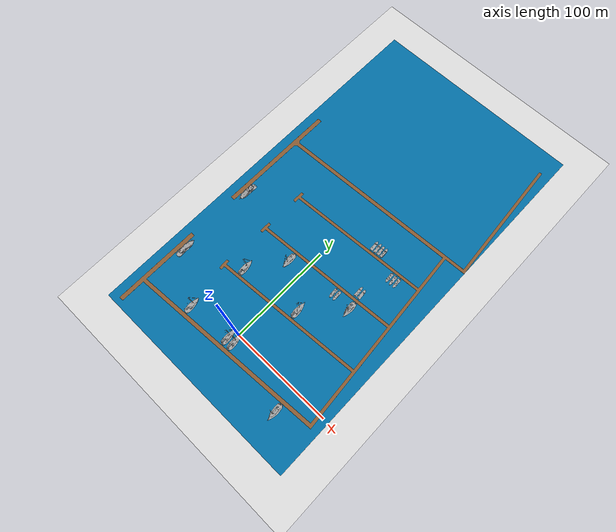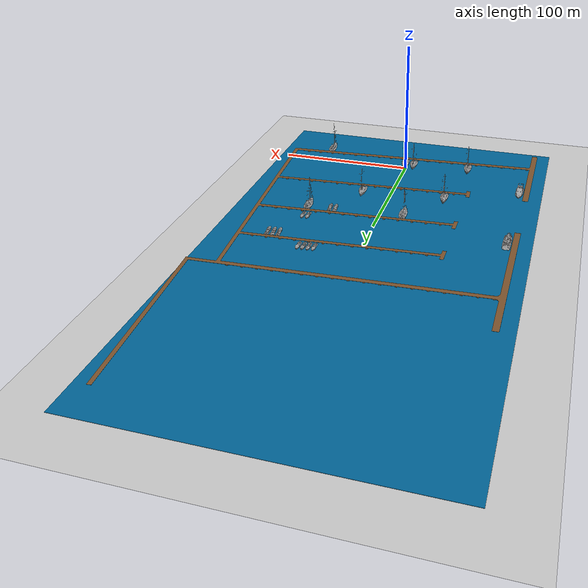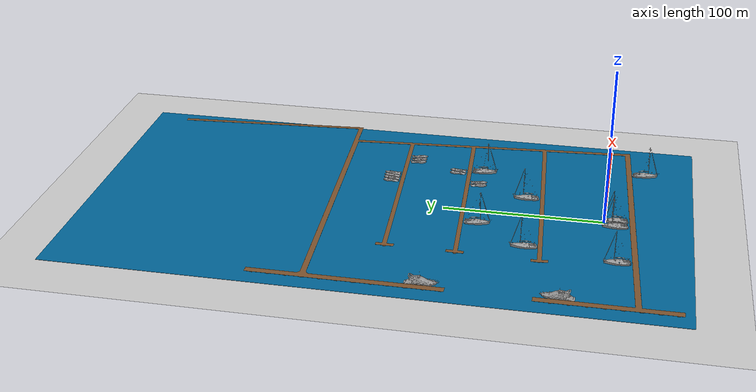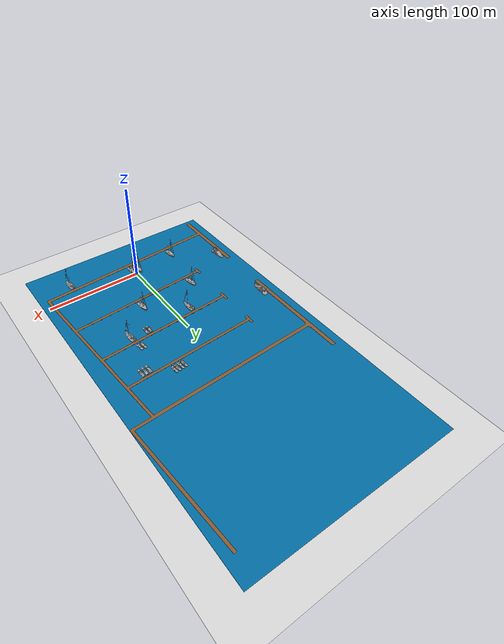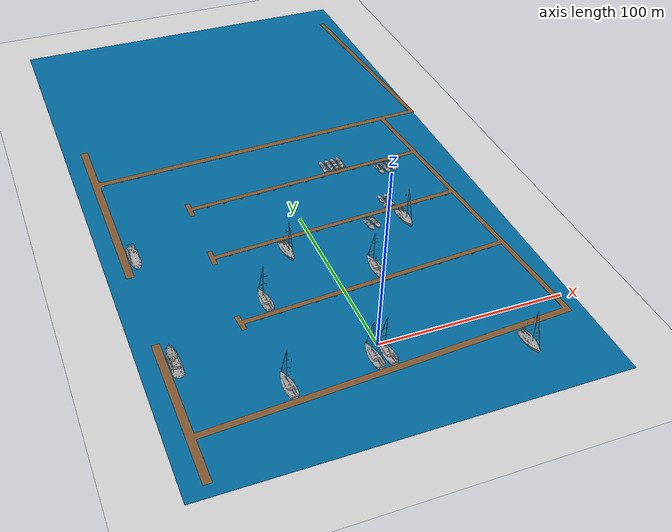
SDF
<sdf version="1.7">
 <world name="default">
  <model name="ground_plane">
   <static>1</static>
   <link name="link">
    <collision name="collision">
     <geometry><plane><normal>0 0 1</normal><size>100 100</size></plane></geometry>
     <surface><friction><ode><mu>100</mu><mu2>50</mu2></ode></friction></surface>
    </collision>
    <visual name="visual">
     <cast_shadows>0</cast_shadows>
     <geometry><plane><normal>0 0 1</normal><size>100 100</size></plane></geometry>
     <material>
      <script><uri>file://media/materials/scripts/gazebo.material</uri><name>Gazebo/Grey</name></script>
     </material>
    </visual>
   </link>
  </model>
  <model name="Marina_Zona_A">
   <link name="link">
    <inertial>
     <mass>100000</mass>
     <inertia><ixx>0</ixx><ixy>0</ixy><ixz>0</ixz><iyy>0</iyy><iyz>0</iyz><izz>0</izz></inertia>
    </inertial>
    <visual name="visual">
     <geometry>
      <mesh>
       <uri>/home/albert/marinero_ws/src/marinero_simulations/models/Marina_Zona_A/meshes/Marina_Zona_A.stl</uri>
       <scale>1 1 1</scale>
      </mesh>
     </geometry>
     <material>
      <script><uri>file://media/materials/scripts/gazebo.material</uri><name>Gazebo/Brown</name></script>
      <ambient>0.278 0.129 0.02 1</ambient>
      <diffuse>0.278 0.129 0.02 1</diffuse>
      <specular>0.278 0.129 0.02 1</specular>
      <emissive>0 0 0 1</emissive>
      <shader type="pixel"><normal_map>__default__</normal_map></shader>
     </material>
    </visual>
    <collision name="collision">
     <geometry>
      <mesh>
       <uri>/home/albert/marinero_ws/src/marinero_simulations/models/Marina_Zona_A/meshes/Marina_Zona_A.stl</uri>
       <scale>1 1 1</scale>
      </mesh>
     </geometry>
     <surface>
      <friction>
       <ode><mu>0.9</mu><mu2>0.9</mu2><fdir1>0 0 0</fdir1><slip1>0.001</slip1><slip2>1e-05</slip2></ode>
       <torsional>
        <coefficient>1</coefficient>
        <patch_radius>0</patch_radius>
        <surface_radius>0</surface_radius>
        <use_patch_radius>1</use_patch_radius>
        <ode><slip>0</slip></ode>
       </torsional>
      </friction>
      <bounce><restitution_coefficient>0</restitution_coefficient><threshold>1000</threshold></bounce>
      <contact>
       <collide_without_contact>0</collide_without_contact>
       <collide_without_contact_bitmask>0</collide_without_contact_bitmask>
       <collide_bitmask>1</collide_bitmask>
       <ode>
        <soft_cfm>0</soft_cfm>
        <soft_erp>0.2</soft_erp>
        <kp>1e+11</kp>
        <kd>100</kd>
        <max_vel>10</max_vel>
        <min_depth>0.001</min_depth>
       </ode>
       <bullet>
        <split_impulse>1</split_impulse>
        <split_impulse_penetration_threshold>-0.01</split_impulse_penetration_threshold>
        <soft_cfm>0</soft_cfm>
        <soft_erp>0.2</soft_erp>
        <kp>1e+11</kp>
        <kd>100</kd>
       </bullet>
      </contact>
     </surface>
    </collision>
   </link>
   <static>1</static>
   <pose>-100.227 -48.3185 0.08 0 -0 0</pose>
  </model>
  <model name="sailboat_1">
   <static>1</static>
   <link name="link">
    <visual name="visual">
     <pose>0 0 1 0 0 -1.507</pose>
     <geometry>
      <mesh>
       <uri>/home/albert/marinero_ws/src/marinero_simulations/models/sailboat_1/meshes/Sailboat.stl</uri>
       <scale>1.8 1.8 1.8</scale>
      </mesh>
     </geometry>
     <material>
      <script><uri>file://media/materials/scripts/gazebo.material</uri><name>Gazebo/Grey</name></script>
     </material>
    </visual>
    <collision name="collision">
     <pose>0 0 1 0 0 -1.507</pose>
     <geometry>
      <mesh>
       <uri>/home/albert/marinero_ws/src/marinero_simulations/models/sailboat_1/meshes/Sailboat.stl</uri>
       <scale>1.8 1.8 1.8</scale>
      </mesh>
     </geometry>
    </collision>
   </link>
   <pose>-48.5208 -10.4492 0 0 -0 0</pose>
  </model>
  <model name="sailboat_1_clone">
   <static>1</static>
   <link name="link">
    <visual name="visual">
     <pose>0 0 1 0 0 -1.507</pose>
     <geometry>
      <mesh>
       <uri>/home/albert/marinero_ws/src/marinero_simulations/models/sailboat_1/meshes/Sailboat.stl</uri>
       <scale>1.8 1.8 1.8</scale>
      </mesh>
     </geometry>
     <material>
      <script><uri>file://media/materials/scripts/gazebo.material</uri><name>Gazebo/Grey</name></script>
     </material>
    </visual>
    <collision name="collision">
     <pose>0 0 1 0 0 -1.507</pose>
     <geometry>
      <mesh>
       <uri>/home/albert/marinero_ws/src/marinero_simulations/models/sailboat_1/meshes/Sailboat.stl</uri>
       <scale>1.8 1.8 1.8</scale>
      </mesh>
     </geometry>
    </collision>
   </link>
   <pose>-39.7569 44.9738 0 0 -0 0</pose>
  </model>
  <model name="sailboat_1_clone_0">
   <static>1</static>
   <link name="link">
    <visual name="visual">
     <pose>0 0 1 0 0 -1.507</pose>
     <geometry>
      <mesh>
       <uri>/home/albert/marinero_ws/src/marinero_simulations/models/sailboat_1/meshes/Sailboat.stl</uri>
       <scale>1.8 1.8 1.8</scale>
      </mesh>
     </geometry>
     <material>
      <script><uri>file://media/materials/scripts/gazebo.material</uri><name>Gazebo/Grey</name></script>
     </material>
    </visual>
    <collision name="collision">
     <pose>0 0 1 0 0 -1.507</pose>
     <geometry>
      <mesh>
       <uri>/home/albert/marinero_ws/src/marinero_simulations/models/sailboat_1/meshes/Sailboat.stl</uri>
       <scale>1.8 1.8 1.8</scale>
      </mesh>
     </geometry>
    </collision>
   </link>
   <pose>21.7205 49.4998 0 0 -0 0</pose>
  </model>
  <model name="sailboat_1_clone_1">
   <static>1</static>
   <link name="link">
    <visual name="visual">
     <pose>0 0 1 0 0 -1.507</pose>
     <geometry>
      <mesh>
       <uri>/home/albert/marinero_ws/src/marinero_simulations/models/sailboat_1/meshes/Sailboat.stl</uri>
       <scale>1.8 1.8 1.8</scale>
      </mesh>
     </geometry>
     <material>
      <script><uri>file://media/materials/scripts/gazebo.material</uri><name>Gazebo/Grey</name></script>
     </material>
    </visual>
    <collision name="collision">
     <pose>0 0 1 0 0 -1.507</pose>
     <geometry>
      <mesh>
       <uri>/home/albert/marinero_ws/src/marinero_simulations/models/sailboat_1/meshes/Sailboat.stl</uri>
       <scale>1.8 1.8 1.8</scale>
      </mesh>
     </geometry>
    </collision>
   </link>
   <pose>67.7231 -22.5244 0 0 0 -3.13388</pose>
  </model>
  <model name="sailboat_1_clone_1_clone">
   <static>1</static>
   <link name="link">
    <visual name="visual">
     <pose>0 0 1 0 0 -1.507</pose>
     <geometry>
      <mesh>
       <uri>/home/albert/marinero_ws/src/marinero_simulations/models/sailboat_1/meshes/Sailboat.stl</uri>
       <scale>1.8 1.8 1.8</scale>
      </mesh>
     </geometry>
     <material>
      <script><uri>file://media/materials/scripts/gazebo.material</uri><name>Gazebo/Grey</name></script>
     </material>
    </visual>
    <collision name="collision">
     <pose>0 0 1 0 0 -1.507</pose>
     <geometry>
      <mesh>
       <uri>/home/albert/marinero_ws/src/marinero_simulations/models/sailboat_1/meshes/Sailboat.stl</uri>
       <scale>1.8 1.8 1.8</scale>
      </mesh>
     </geometry>
    </collision>
   </link>
   <pose>53.4256 81.5662 0 0 0 -3.13388</pose>
  </model>
  <model name="speedboat_clone_4_clone">
   <static>1</static>
   <link name="link">
    <visual name="visual">
     <pose>0 0 0.2 0 -0 1.57</pose>
     <geometry>
      <mesh>
       <uri>/home/albert/marinero_ws/src/marinero_simulations/models/speedboat/meshes/Speedboat.stl</uri>
       <scale>2 2 2</scale>
      </mesh>
     </geometry>
     <material>
      <script><uri>file://media/materials/scripts/gazebo.material</uri><name>Gazebo/Grey</name></script>
     </material>
    </visual>
    <collision name="collision">
     <pose>0 0 0.2 0 -0 1.57</pose>
     <geometry>
      <mesh>
       <uri>/home/albert/marinero_ws/src/marinero_simulations/models/sailboat_1/meshes/Speedboat.stl</uri>
       <scale>2 2 2</scale>
      </mesh>
     </geometry>
    </collision>
   </link>
   <pose>40.7131 140.663 0 0 -0 0.057421</pose>
  </model>
  <model name="speedboat_clone_4_clone_clone">
   <static>1</static>
   <link name="link">
    <visual name="visual">
     <pose>0 0 0.2 0 -0 1.57</pose>
     <geometry>
      <mesh>
       <uri>/home/albert/marinero_ws/src/marinero_simulations/models/speedboat/meshes/Speedboat.stl</uri>
       <scale>2 2 2</scale>
      </mesh>
     </geometry>
     <material>
      <script><uri>file://media/materials/scripts/gazebo.material</uri><name>Gazebo/Grey</name></script>
     </material>
    </visual>
    <collision name="collision">
     <pose>0 0 0.2 0 -0 1.57</pose>
     <geometry>
      <mesh>
       <uri>/home/albert/marinero_ws/src/marinero_simulations/models/sailboat_1/meshes/Speedboat.stl</uri>
       <scale>2 2 2</scale>
      </mesh>
     </geometry>
    </collision>
   </link>
   <pose>37.1169 140.409 0 0 -0 0.057421</pose>
  </model>
  <model name="speedboat_clone_4_clone_clone_0">
   <static>1</static>
   <link name="link">
    <visual name="visual">
     <pose>0 0 0.2 0 -0 1.57</pose>
     <geometry>
      <mesh>
       <uri>/home/albert/marinero_ws/src/marinero_simulations/models/speedboat/meshes/Speedboat.stl</uri>
       <scale>2 2 2</scale>
      </mesh>
     </geometry>
     <material>
      <script><uri>file://media/materials/scripts/gazebo.material</uri><name>Gazebo/Grey</name></script>
     </material>
    </visual>
    <collision name="collision">
     <pose>0 0 0.2 0 -0 1.57</pose>
     <geometry>
      <mesh>
       <uri>/home/albert/marinero_ws/src/marinero_simulations/models/sailboat_1/meshes/Speedboat.stl</uri>
       <scale>2 2 2</scale>
      </mesh>
     </geometry>
    </collision>
   </link>
   <pose>33.5259 140.097 0 0 -0 0.057421</pose>
  </model>
  <model name="speedboat_clone_4_clone_clone_1">
   <static>1</static>
   <link name="link">
    <visual name="visual">
     <pose>0 0 0.2 0 -0 1.57</pose>
     <geometry>
      <mesh>
       <uri>/home/albert/marinero_ws/src/marinero_simulations/models/speedboat/meshes/Speedboat.stl</uri>
       <scale>2 2 2</scale>
      </mesh>
     </geometry>
     <material>
      <script><uri>file://media/materials/scripts/gazebo.material</uri><name>Gazebo/Grey</name></script>
     </material>
    </visual>
    <collision name="collision">
     <pose>0 0 0.2 0 -0 1.57</pose>
     <geometry>
      <mesh>
       <uri>/home/albert/marinero_ws/src/marinero_simulations/models/sailboat_1/meshes/Speedboat.stl</uri>
       <scale>2 2 2</scale>
      </mesh>
     </geometry>
    </collision>
   </link>
   <pose>29.824 139.85 0 0 -0 0.057421</pose>
  </model>
  <model name="speedboat_clone_4_clone_clone_2">
   <static>1</static>
   <link name="link">
    <visual name="visual">
     <pose>0 0 0.2 0 -0 1.57</pose>
     <geometry>
      <mesh>
       <uri>/home/albert/marinero_ws/src/marinero_simulations/models/speedboat/meshes/Speedboat.stl</uri>
       <scale>2 2 2</scale>
      </mesh>
     </geometry>
     <material>
      <script><uri>file://media/materials/scripts/gazebo.material</uri><name>Gazebo/Grey</name></script>
     </material>
    </visual>
    <collision name="collision">
     <pose>0 0 0.2 0 -0 1.57</pose>
     <geometry>
      <mesh>
       <uri>/home/albert/marinero_ws/src/marinero_simulations/models/sailboat_1/meshes/Speedboat.stl</uri>
       <scale>2 2 2</scale>
      </mesh>
     </geometry>
    </collision>
   </link>
   <pose>48.4483 98.6679 0 0 -0 0.057421</pose>
  </model>
  <model name="speedboat_clone_4_clone_clone_3">
   <static>1</static>
   <link name="link">
    <visual name="visual">
     <pose>0 0 0.2 0 -0 1.57</pose>
     <geometry>
      <mesh>
       <uri>/home/albert/marinero_ws/src/marinero_simulations/models/speedboat/meshes/Speedboat.stl</uri>
       <scale>2 2 2</scale>
      </mesh>
     </geometry>
     <material>
      <script><uri>file://media/materials/scripts/gazebo.material</uri><name>Gazebo/Grey</name></script>
     </material>
    </visual>
    <collision name="collision">
     <pose>0 0 0.2 0 -0 1.57</pose>
     <geometry>
      <mesh>
       <uri>/home/albert/marinero_ws/src/marinero_simulations/models/sailboat_1/meshes/Speedboat.stl</uri>
       <scale>2 2 2</scale>
      </mesh>
     </geometry>
    </collision>
   </link>
   <pose>52.2215 98.8441 0 0 -0 0.057421</pose>
  </model>
  <model name="speedboat_clone_3_clone_11_clone_1_clone">
   <static>1</static>
   <link name="link">
    <visual name="visual">
     <pose>0 0 0.2 0 -0 1.57</pose>
     <geometry>
      <mesh>
       <uri>/home/albert/marinero_ws/src/marinero_simulations/models/speedboat/meshes/Speedboat.stl</uri>
       <scale>2 2 2</scale>
      </mesh>
     </geometry>
     <material>
      <script><uri>file://media/materials/scripts/gazebo.material</uri><name>Gazebo/Grey</name></script>
     </material>
    </visual>
    <collision name="collision">
     <pose>0 0 0.2 0 -0 1.57</pose>
     <geometry>
      <mesh>
       <uri>/home/albert/marinero_ws/src/marinero_simulations/models/sailboat_1/meshes/Speedboat.stl</uri>
       <scale>2 2 2</scale>
      </mesh>
     </geometry>
    </collision>
   </link>
   <pose>67.5823 126.121 0 0 0 -3.07382</pose>
  </model>
  <model name="speedboat_clone_3_clone_11_clone_1_clone_clone">
   <static>1</static>
   <link name="link">
    <visual name="visual">
     <pose>0 0 0.2 0 -0 1.57</pose>
     <geometry>
      <mesh>
       <uri>/home/albert/marinero_ws/src/marinero_simulations/models/speedboat/meshes/Speedboat.stl</uri>
       <scale>2 2 2</scale>
      </mesh>
     </geometry>
     <material>
      <script><uri>file://media/materials/scripts/gazebo.material</uri><name>Gazebo/Grey</name></script>
     </material>
    </visual>
    <collision name="collision">
     <pose>0 0 0.2 0 -0 1.57</pose>
     <geometry>
      <mesh>
       <uri>/home/albert/marinero_ws/src/marinero_simulations/models/sailboat_1/meshes/Speedboat.stl</uri>
       <scale>2 2 2</scale>
      </mesh>
     </geometry>
    </collision>
   </link>
   <pose>63.5964 125.869 0 0 0 -3.07382</pose>
  </model>
  <model name="speedboat_clone_3_clone_11_clone_1_clone_clone_0">
   <static>1</static>
   <link name="link">
    <visual name="visual">
     <pose>0 0 0.2 0 -0 1.57</pose>
     <geometry>
      <mesh>
       <uri>/home/albert/marinero_ws/src/marinero_simulations/models/speedboat/meshes/Speedboat.stl</uri>
       <scale>2 2 2</scale>
      </mesh>
     </geometry>
     <material>
      <script><uri>file://media/materials/scripts/gazebo.material</uri><name>Gazebo/Grey</name></script>
     </material>
    </visual>
    <collision name="collision">
     <pose>0 0 0.2 0 -0 1.57</pose>
     <geometry>
      <mesh>
       <uri>/home/albert/marinero_ws/src/marinero_simulations/models/sailboat_1/meshes/Speedboat.stl</uri>
       <scale>2 2 2</scale>
      </mesh>
     </geometry>
    </collision>
   </link>
   <pose>59.554 125.7 0 0 0 -3.07382</pose>
  </model>
  <model name="speedboat_clone_3_clone_11_clone_1_clone_clone_0_clone">
   <static>1</static>
   <link name="link">
    <visual name="visual">
     <pose>0 0 0.2 0 -0 1.57</pose>
     <geometry>
      <mesh>
       <uri>/home/albert/marinero_ws/src/marinero_simulations/models/speedboat/meshes/Speedboat.stl</uri>
       <scale>2 2 2</scale>
      </mesh>
     </geometry>
     <material>
      <script><uri>file://media/materials/scripts/gazebo.material</uri><name>Gazebo/Grey</name></script>
     </material>
    </visual>
    <collision name="collision">
     <pose>0 0 0.2 0 -0 1.57</pose>
     <geometry>
      <mesh>
       <uri>/home/albert/marinero_ws/src/marinero_simulations/models/sailboat_1/meshes/Speedboat.stl</uri>
       <scale>2 2 2</scale>
      </mesh>
     </geometry>
    </collision>
   </link>
   <pose>33.1215 81.572 0 0 0 -3.07382</pose>
  </model>
  <model name="speedboat_clone_3_clone_11_clone_1_clone_clone_0_clone_0">
   <static>1</static>
   <link name="link">
    <visual name="visual">
     <pose>0 0 0.2 0 -0 1.57</pose>
     <geometry>
      <mesh>
       <uri>/home/albert/marinero_ws/src/marinero_simulations/models/speedboat/meshes/Speedboat.stl</uri>
       <scale>2 2 2</scale>
      </mesh>
     </geometry>
     <material>
      <script><uri>file://media/materials/scripts/gazebo.material</uri><name>Gazebo/Grey</name></script>
     </material>
    </visual>
    <collision name="collision">
     <pose>0 0 0.2 0 -0 1.57</pose>
     <geometry>
      <mesh>
       <uri>/home/albert/marinero_ws/src/marinero_simulations/models/sailboat_1/meshes/Speedboat.stl</uri>
       <scale>2 2 2</scale>
      </mesh>
     </geometry>
    </collision>
   </link>
   <pose>36.9942 81.9155 0 0 0 -3.07382</pose>
  </model>
  <model name="sailboat_1_clone_2">
   <static>1</static>
   <link name="link">
    <visual name="visual">
     <pose>0 0 1 0 0 -1.507</pose>
     <geometry>
      <mesh>
       <uri>/home/albert/marinero_ws/src/marinero_simulations/models/sailboat_1/meshes/Sailboat.stl</uri>
       <scale>1.8 1.8 1.8</scale>
      </mesh>
     </geometry>
     <material>
      <script><uri>file://media/materials/scripts/gazebo.material</uri><name>Gazebo/Grey</name></script>
     </material>
    </visual>
    <collision name="collision">
     <pose>0 0 1 0 0 -1.507</pose>
     <geometry>
      <mesh>
       <uri>/home/albert/marinero_ws/src/marinero_simulations/models/sailboat_1/meshes/Sailboat.stl</uri>
       <scale>1.8 1.8 1.8</scale>
      </mesh>
     </geometry>
    </collision>
   </link>
   <pose>-5.08482 -7.45102 0 0 -0 0</pose>
  </model>
  <model name="sailboat_1_clone_3">
   <static>1</static>
   <link name="link">
    <visual name="visual">
     <pose>0 0 1 0 0 -1.507</pose>
     <geometry>
      <mesh>
       <uri>/home/albert/marinero_ws/src/marinero_simulations/models/sailboat_1/meshes/Sailboat.stl</uri>
       <scale>1.8 1.8 1.8</scale>
      </mesh>
     </geometry>
     <material>
      <script><uri>file://media/materials/scripts/gazebo.material</uri><name>Gazebo/Grey</name></script>
     </material>
    </visual>
    <collision name="collision">
     <pose>0 0 1 0 0 -1.507</pose>
     <geometry>
      <mesh>
       <uri>/home/albert/marinero_ws/src/marinero_simulations/models/sailboat_1/meshes/Sailboat.stl</uri>
       <scale>1.8 1.8 1.8</scale>
      </mesh>
     </geometry>
    </collision>
   </link>
   <pose>1.79626 -7.14461 0 0 -0 0</pose>
  </model>
  <model name="yacht_1">
   <static>1</static>
   <link name="link">
    <visual name="visual">
     <pose>0 0 0.35 0 -0 0</pose>
     <geometry>
      <mesh>
       <uri>/home/albert/marinero_ws/src/marinero_simulations/models/yacht_1/meshes/Yacht_1.stl</uri>
       <scale>2.2 2.2 2.2</scale>
      </mesh>
     </geometry>
     <material>
      <script><uri>file://media/materials/scripts/gazebo.material</uri><name>Gazebo/Grey</name></script>
     </material>
    </visual>
    <collision name="collision">
     <pose>0 0 0.35 0 -0 0</pose>
     <geometry>
      <mesh>
       <uri>/home/albert/marinero_ws/src/marinero_simulations/models/yacht_1/meshes/Yacht_1.stl</uri>
       <scale>2.2 2.2 2.2</scale>
      </mesh>
     </geometry>
    </collision>
   </link>
   <pose>-92.6135 99.2203 0 0 -0 0</pose>
  </model>
  <model name="yacht_1_0">
   <static>1</static>
   <link name="link">
    <visual name="visual">
     <pose>0 0 0.35 0 -0 0</pose>
     <geometry>
      <mesh>
       <uri>/home/albert/marinero_ws/src/marinero_simulations/models/yacht_1/meshes/Yacht_1.stl</uri>
       <scale>2.2 2.2 2.2</scale>
      </mesh>
     </geometry>
     <material>
      <script><uri>file://media/materials/scripts/gazebo.material</uri><name>Gazebo/Grey</name></script>
     </material>
    </visual>
    <collision name="collision">
     <pose>0 0 0.35 0 -0 0</pose>
     <geometry>
      <mesh>
       <uri>/home/albert/marinero_ws/src/marinero_simulations/models/yacht_1/meshes/Yacht_1.stl</uri>
       <scale>2.2 2.2 2.2</scale>
      </mesh>
     </geometry>
    </collision>
   </link>
   <pose>-92.721 20.3612 0 0 -0 3.13948</pose>
  </model>
  <model name="sailboat_1_clone_1_clone_clone_0_clone_1">
   <static>1</static>
   <link name="link">
    <visual name="visual">
     <pose>0 0 1 0 0 -1.507</pose>
     <geometry>
      <mesh>
       <uri>/home/albert/marinero_ws/src/marinero_simulations/models/sailboat_1/meshes/Sailboat.stl</uri>
       <scale>1.8 1.8 1.8</scale>
      </mesh>
     </geometry>
     <material>
      <script><uri>file://media/materials/scripts/gazebo.material</uri><name>Gazebo/Grey</name></script>
     </material>
    </visual>
    <collision name="collision">
     <pose>0 0 1 0 0 -1.507</pose>
     <geometry>
      <mesh>
       <uri>/home/albert/marinero_ws/src/marinero_simulations/models/sailboat_1/meshes/Sailboat.stl</uri>
       <scale>1.8 1.8 1.8</scale>
      </mesh>
     </geometry>
    </collision>
   </link>
   <pose>-16.3159 77.4121 0 0 0 -3.13388</pose>
  </model>
  <model name="sea_plane_A">
   <link name="link">
    <inertial>
     <mass>5.27875e+06</mass>
     <inertia>
      <ixx>4.66688e+09</ixx>
      <ixy>0</ixy>
      <ixz>0</ixz>
      <iyy>1.84866e+10</iyy>
      <iyz>0</iyz>
      <izz>2.31535e+10</izz>
     </inertia>
    </inertial>
    <visual name="visual">
     <cast_shadows>0</cast_shadows>
     <geometry><box><size>215 378 0.25</size></box></geometry>
     <material>
      <script>
       <uri>model://sea_plane/materials/scripts</uri>
       <uri>model://sea_plane/materials/textures</uri>
       <name>vrc/sea</name>
      </script>
      <shader type="pixel"><normal_map>__default__</normal_map></shader>
      <ambient>0 0.4 0.6 0</ambient>
      <diffuse>0 0.4 0.6 1</diffuse>
      <specular>0.2 0.2 0.2 1</specular>
      <emissive>0 0 0 1</emissive>
     </material>
    </visual>
    <collision name="collision">
     <geometry><box><size>215 378 0.25</size></box></geometry>
     <surface>
      <friction>
       <ode><mu>1</mu><mu2>1</mu2><fdir1>0 0 0</fdir1><slip1>0</slip1><slip2>0</slip2></ode>
       <torsional>
        <coefficient>1</coefficient>
        <patch_radius>0</patch_radius>
        <surface_radius>0</surface_radius>
        <use_patch_radius>1</use_patch_radius>
        <ode><slip>0</slip></ode>
       </torsional>
      </friction>
      <bounce><restitution_coefficient>0</restitution_coefficient><threshold>1e+06</threshold></bounce>
      <contact>
       <collide_without_contact>0</collide_without_contact>
       <collide_without_contact_bitmask>1</collide_without_contact_bitmask>
       <collide_bitmask>1</collide_bitmask>
       <ode>
        <soft_cfm>0</soft_cfm>
        <soft_erp>0.2</soft_erp>
        <kp>1e+13</kp>
        <kd>1</kd>
        <max_vel>0.01</max_vel>
        <min_depth>0</min_depth>
       </ode>
       <bullet>
        <split_impulse>1</split_impulse>
        <split_impulse_penetration_threshold>-0.01</split_impulse_penetration_threshold>
        <soft_cfm>0</soft_cfm>
        <soft_erp>0.2</soft_erp>
        <kp>1e+13</kp>
        <kd>1</kd>
       </bullet>
      </contact>
     </surface>
    </collision>
   </link>
   <static>1</static>
   <pose>-2.01085 135.084 0 0 -0 0</pose>
  </model>
 </world>
</sdf>
